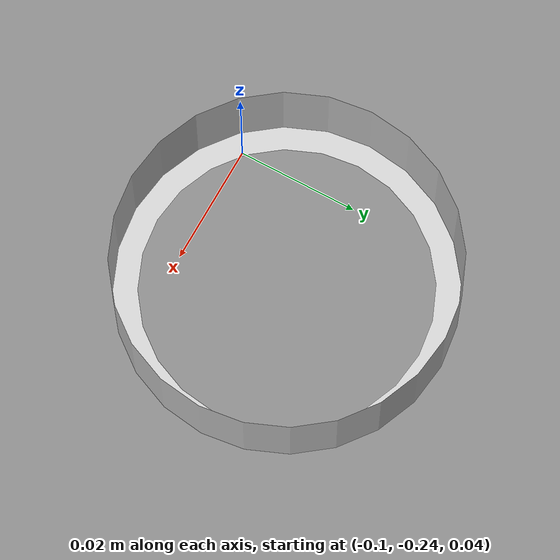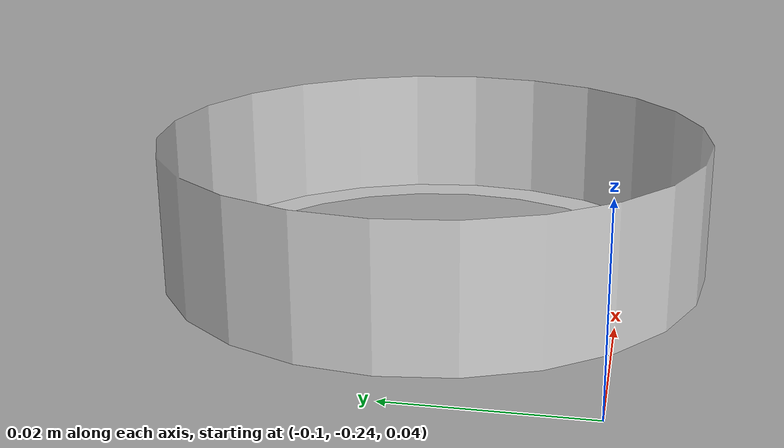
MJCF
<mujoco model="original-46">
  <default>
    <default class="visual">
      <geom group="2" type="mesh" contype="0" conaffinity="0"/>
    </default>
    <default class="collision">
      <geom group="3" type="mesh"/>
    </default>
  </default>
  <asset>
    <material name="material_0_0" specular="0.06666666666666667" shininess="0.03" rgba="0.8 0.8 0.8 1"/>
    <mesh file="original-46.obj"/>
  </asset>
  <worldbody>
    <body name="original-46">
      <geom material="material_0_0" mesh="original-46" class="visual"/>
      <geom mesh="original-46" class="collision"/>
    </body>
  </worldbody>
</mujoco>
